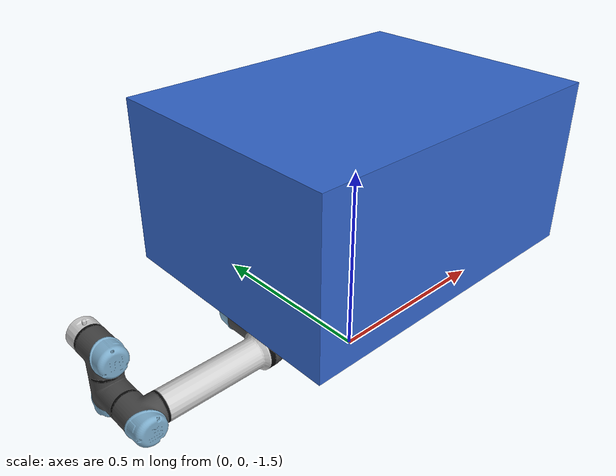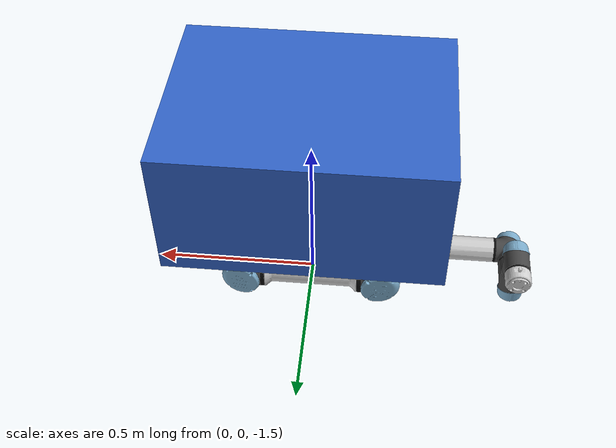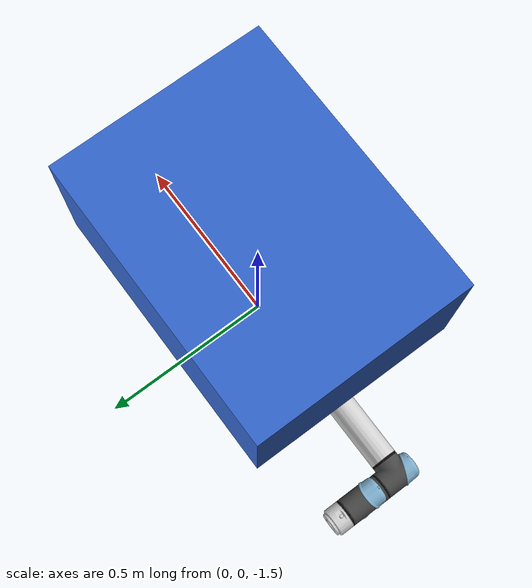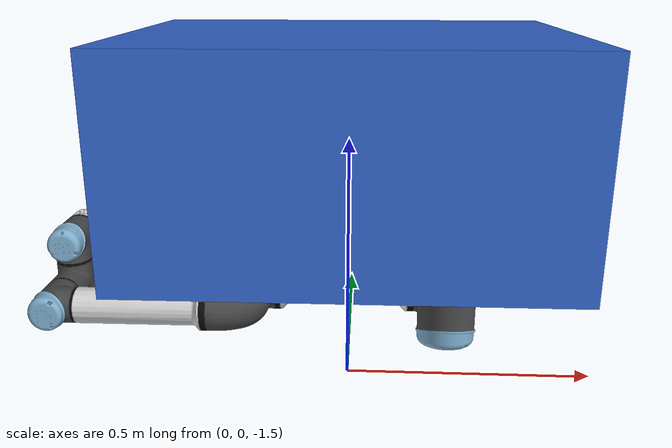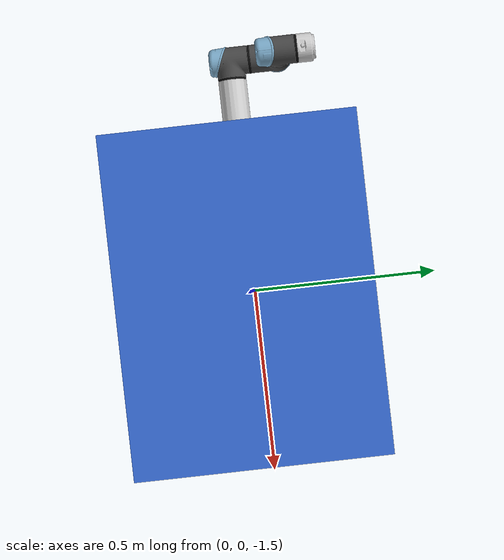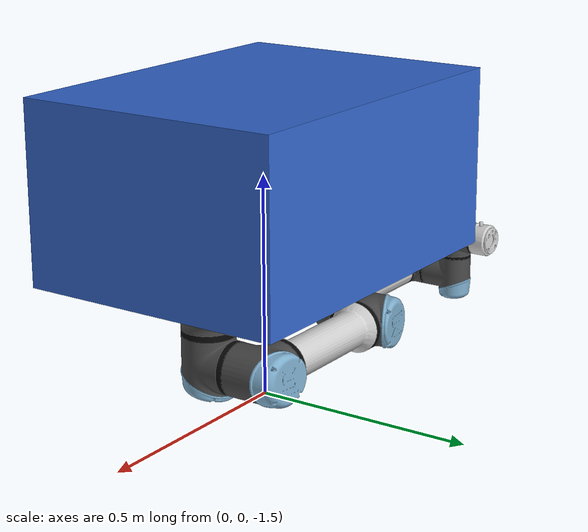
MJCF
<mujoco model="underwater_rov_base">
  <compiler inertiafromgeom="true" angle="radian" autolimits="true" />
  <option integrator="implicitfast" />
  <worldbody>
    <body name="rov" pos="0 0 -1.0">
      <freejoint />
      <geom name="rov_body" type="box" size="0.4 0.3 0.2" mass="150.0" rgba="0.2 0.4 0.8 1" fluidshape="ellipsoid" />
    <body name="base" quat="0 0 1 0" childclass="ur5e" pos="0.2 0 -0.2">
      <inertial mass="4.0" pos="0 0 0" diaginertia="0.00443333156 0.00443333156 0.0072" />
      <geom mesh="base_0" material="black" class="visual" />
      <geom mesh="base_1" material="jointgray" class="visual" />
      <body name="shoulder_link" pos="0 0 0.163">
        <inertial mass="3.7" pos="0 0 0" diaginertia="0.0102675 0.0102675 0.00666" />
        <joint name="shoulder_pan_joint" class="size3" axis="0 0 1" />
        <geom mesh="shoulder_0" material="urblue" class="visual" />
        <geom mesh="shoulder_1" material="black" class="visual" />
        <geom mesh="shoulder_2" material="jointgray" class="visual" />
        <geom class="collision" size="0.06 0.06" pos="0 0 -0.04" fluidshape="ellipsoid" />
        <body name="upper_arm_link" pos="0 0.138 0" quat="1 0 1 0">
          <inertial mass="8.393" pos="0 0 0.2125" diaginertia="0.133886 0.133886 0.0151074" />
          <joint name="shoulder_lift_joint" class="size3" />
          <geom mesh="upperarm_0" material="linkgray" class="visual" />
          <geom mesh="upperarm_1" material="black" class="visual" />
          <geom mesh="upperarm_2" material="jointgray" class="visual" />
          <geom mesh="upperarm_3" material="urblue" class="visual" />
          <geom class="collision" pos="0 -0.04 0" quat="1 1 0 0" size="0.06 0.06" fluidshape="ellipsoid" />
          <geom class="collision" size="0.05 0.2" pos="0 0 0.2" fluidshape="ellipsoid" />
          <body name="forearm_link" pos="0 -0.131 0.425">
            <inertial mass="2.275" pos="0 0 0.196" diaginertia="0.0311796 0.0311796 0.004095" />
            <joint name="elbow_joint" class="size3_limited" />
            <geom mesh="forearm_0" material="urblue" class="visual" />
            <geom mesh="forearm_1" material="linkgray" class="visual" />
            <geom mesh="forearm_2" material="black" class="visual" />
            <geom mesh="forearm_3" material="jointgray" class="visual" />
            <geom class="collision" pos="0 0.08 0" quat="1 1 0 0" size="0.055 0.06" fluidshape="ellipsoid" />
            <geom class="collision" size="0.038 0.19" pos="0 0 0.2" fluidshape="ellipsoid" />
            <body name="wrist_1_link" pos="0 0 0.392" quat="1 0 1 0">
              <inertial mass="1.219" pos="0 0.127 0" diaginertia="0.0025599 0.0025599 0.0021942" />
              <joint name="wrist_1_joint" class="size1" />
              <geom mesh="wrist1_0" material="black" class="visual" />
              <geom mesh="wrist1_1" material="urblue" class="visual" />
              <geom mesh="wrist1_2" material="jointgray" class="visual" />
              <geom class="collision" pos="0 0.05 0" quat="1 1 0 0" size="0.04 0.07" fluidshape="ellipsoid" />
              <body name="wrist_2_link" pos="0 0.127 0">
                <inertial mass="1.219" pos="0 0 0.1" diaginertia="0.0025599 0.0025599 0.0021942" />
                <joint name="wrist_2_joint" axis="0 0 1" class="size1" />
                <geom mesh="wrist2_0" material="black" class="visual" />
                <geom mesh="wrist2_1" material="urblue" class="visual" />
                <geom mesh="wrist2_2" material="jointgray" class="visual" />
                <geom class="collision" size="0.04 0.06" pos="0 0 0.04" fluidshape="ellipsoid" />
                <geom class="collision" pos="0 0.02 0.1" quat="1 1 0 0" size="0.04 0.04" fluidshape="ellipsoid" />
                <body name="wrist_3_link" pos="0 0 0.1">
                  <inertial mass="0.1889" pos="0 0.0771683 0" quat="1 0 0 1" diaginertia="0.000132134 9.90863e-05 9.90863e-05" />
                  <joint name="wrist_3_joint" class="size1" />
                  <geom material="linkgray" mesh="wrist3" class="visual" />
                  <geom class="eef_collision" pos="0 0.08 0" quat="1 1 0 0" size="0.04 0.02" fluidshape="ellipsoid" />
                  <site name="attachment_site" pos="0 0.1 0" quat="-1 1 0 0" />
                <body name="gripper_mount" pos="0 0.1 0" quat="-1 1 0 0"><body name="gripper_base_mount" pos="0 0 0.007" childclass="gripper_2f85">
      <geom class="gripper_visual" mesh="gripper_base_mount" material="gripper_black" />
      <geom class="gripper_collision" mesh="gripper_base_mount" fluidshape="ellipsoid" />
      <body name="gripper_base" pos="0 0 0.0038" quat="1 0 0 -1">
        <inertial mass="0.777441" pos="0 -2.70394e-05 0.0354675" quat="1 -0.00152849 0 0" diaginertia="0.000260285 0.000225381 0.000152708" />
        <geom class="gripper_visual" mesh="gripper_base" material="gripper_black" />
        <geom class="gripper_collision" mesh="gripper_base" fluidshape="ellipsoid" />
        <site name="gripper_pinch" pos="0 0 0.145" type="sphere" group="5" rgba="0.9 0.9 0.9 1" size="0.005" />

        <body name="gripper_right_driver" pos="0 0.0306011 0.054904">
          <inertial mass="0.00899563" pos="2.96931e-12 0.0177547 0.00107314" quat="0.681301 0.732003 0 0" diaginertia="1.72352e-06 1.60906e-06 3.22006e-07" />
          <joint name="gripper_right_driver_joint" class="gripper_driver" />
          <geom class="gripper_visual" mesh="gripper_driver" material="gripper_gray" />
          <geom class="gripper_collision" mesh="gripper_driver" fluidshape="ellipsoid" />
          <body name="gripper_right_coupler" pos="0 0.0315 -0.0041">
            <inertial mass="0.0140974" pos="0 0.00301209 0.0232175" quat="0.705636 -0.0455904 0.0455904 0.705636" diaginertia="4.16206e-06 3.52216e-06 8.88131e-07" />
            <joint name="gripper_right_coupler_joint" class="gripper_coupler" />
            <geom class="gripper_visual" mesh="gripper_coupler" material="gripper_black" />
            <geom class="gripper_collision" mesh="gripper_coupler" fluidshape="ellipsoid" />
          </body>
        </body>
        <body name="gripper_right_spring_link" pos="0 0.0132 0.0609">
          <inertial mass="0.0221642" pos="-8.65005e-09 0.0181624 0.0212658" quat="0.663403 -0.244737 0.244737 0.663403" diaginertia="8.96853e-06 6.71733e-06 2.63931e-06" />
          <joint name="gripper_right_spring_link_joint" class="gripper_spring_link" />
          <geom class="gripper_visual" mesh="gripper_spring_link" material="gripper_black" />
          <geom class="gripper_collision" mesh="gripper_spring_link" fluidshape="ellipsoid" />
          <body name="gripper_right_follower" pos="0 0.055 0.0375">
            <inertial mass="0.0125222" pos="0 -0.011046 0.0124786" quat="1 0.1664 0 0" diaginertia="2.67415e-06 2.4559e-06 6.02031e-07" />
            <joint name="gripper_right_follower_joint" class="gripper_follower" />
            <geom class="gripper_visual" mesh="gripper_follower" material="gripper_black" />
            <geom class="gripper_collision" mesh="gripper_follower" fluidshape="ellipsoid" />
            <body name="gripper_right_pad" pos="0 -0.0189 0.01352">
              <geom class="gripper_pad_box1" name="gripper_right_pad1" fluidshape="ellipsoid" />
              <geom class="gripper_pad_box2" name="gripper_right_pad2" fluidshape="ellipsoid" />
              <inertial mass="0.0035" pos="0 -0.0025 0.0185" quat="0.707107 0 0 0.707107" diaginertia="4.73958e-07 3.64583e-07 1.23958e-07" />
              <geom class="gripper_visual" mesh="gripper_pad" />
              <body name="gripper_right_silicone_pad">
                <geom class="gripper_visual" mesh="gripper_silicone_pad" material="gripper_black" />
              </body>
            </body>
          </body>
        </body>

        <body name="gripper_left_driver" pos="0 -0.0306011 0.054904" quat="0 0 0 1">
          <inertial mass="0.00899563" pos="0 0.0177547 0.00107314" quat="0.681301 0.732003 0 0" diaginertia="1.72352e-06 1.60906e-06 3.22006e-07" />
          <joint name="gripper_left_driver_joint" class="gripper_driver" />
          <geom class="gripper_visual" mesh="gripper_driver" material="gripper_gray" />
          <geom class="gripper_collision" mesh="gripper_driver" fluidshape="ellipsoid" />
          <body name="gripper_left_coupler" pos="0 0.0315 -0.0041">
            <inertial mass="0.0140974" pos="0 0.00301209 0.0232175" quat="0.705636 -0.0455904 0.0455904 0.705636" diaginertia="4.16206e-06 3.52216e-06 8.88131e-07" />
            <joint name="gripper_left_coupler_joint" class="gripper_coupler" />
            <geom class="gripper_visual" mesh="gripper_coupler" material="gripper_black" />
            <geom class="gripper_collision" mesh="gripper_coupler" fluidshape="ellipsoid" />
          </body>
        </body>
        <body name="gripper_left_spring_link" pos="0 -0.0132 0.0609" quat="0 0 0 1">
          <inertial mass="0.0221642" pos="-8.65005e-09 0.0181624 0.0212658" quat="0.663403 -0.244737 0.244737 0.663403" diaginertia="8.96853e-06 6.71733e-06 2.63931e-06" />
          <joint name="gripper_left_spring_link_joint" class="gripper_spring_link" />
          <geom class="gripper_visual" mesh="gripper_spring_link" material="gripper_black" />
          <geom class="gripper_collision" mesh="gripper_spring_link" fluidshape="ellipsoid" />
          <body name="gripper_left_follower" pos="0 0.055 0.0375">
            <inertial mass="0.0125222" pos="0 -0.011046 0.0124786" quat="1 0.1664 0 0" diaginertia="2.67415e-06 2.4559e-06 6.02031e-07" />
            <joint name="gripper_left_follower_joint" class="gripper_follower" />
            <geom class="gripper_visual" mesh="gripper_follower" material="gripper_black" />
            <geom class="gripper_collision" mesh="gripper_follower" fluidshape="ellipsoid" />
            <body name="gripper_left_pad" pos="0 -0.0189 0.01352">
              <geom class="gripper_pad_box1" name="gripper_left_pad1" fluidshape="ellipsoid" />
              <geom class="gripper_pad_box2" name="gripper_left_pad2" fluidshape="ellipsoid" />
              <inertial mass="0.0035" pos="0 -0.0025 0.0185" quat="1 0 0 1" diaginertia="4.73958e-07 3.64583e-07 1.23958e-07" />
              <geom class="gripper_visual" mesh="gripper_pad" />
              <body name="gripper_left_silicone_pad">
                <geom class="gripper_visual" mesh="gripper_silicone_pad" material="gripper_black" />
              </body>
            </body>
          </body>
        </body>
      </body>
    </body>
  </body></body>
              </body>
            </body>
          </body>
        </body>
      </body>
    </body>
  </body>
  </worldbody>
  <sensor>
    <framepos name="pos" objtype="body" objname="rov" />
    <framelinvel name="vel" objtype="body" objname="rov" />
  </sensor>
<contact><exclude body1="rov" body2="base" /><exclude body1="rov" body2="shoulder_link" /><exclude body1="wrist_3_link" body2="gripper_base_mount" /><exclude body1="gripper_base" body2="gripper_left_driver" />
    <exclude body1="gripper_base" body2="gripper_right_driver" />
    <exclude body1="gripper_base" body2="gripper_left_spring_link" />
    <exclude body1="gripper_base" body2="gripper_right_spring_link" />
    <exclude body1="gripper_right_coupler" body2="gripper_right_follower" />
    <exclude body1="gripper_left_coupler" body2="gripper_left_follower" />
  </contact><asset><material class="ur5e" name="black" rgba="0.033 0.033 0.033 1" />
    <material class="ur5e" name="jointgray" rgba="0.278 0.278 0.278 1" />
    <material class="ur5e" name="linkgray" rgba="0.82 0.82 0.82 1" />
    <material class="ur5e" name="urblue" rgba="0.49 0.678 0.8 1" />

    <mesh file="E:/Projects/mujoco_plugin/mujoco_plugin/assets/mujoco_menagerie/universal_robots_ur5e/assets/base_0.obj" />
    <mesh file="E:/Projects/mujoco_plugin/mujoco_plugin/assets/mujoco_menagerie/universal_robots_ur5e/assets/base_1.obj" />
    <mesh file="E:/Projects/mujoco_plugin/mujoco_plugin/assets/mujoco_menagerie/universal_robots_ur5e/assets/shoulder_0.obj" />
    <mesh file="E:/Projects/mujoco_plugin/mujoco_plugin/assets/mujoco_menagerie/universal_robots_ur5e/assets/shoulder_1.obj" />
    <mesh file="E:/Projects/mujoco_plugin/mujoco_plugin/assets/mujoco_menagerie/universal_robots_ur5e/assets/shoulder_2.obj" />
    <mesh file="E:/Projects/mujoco_plugin/mujoco_plugin/assets/mujoco_menagerie/universal_robots_ur5e/assets/upperarm_0.obj" />
    <mesh file="E:/Projects/mujoco_plugin/mujoco_plugin/assets/mujoco_menagerie/universal_robots_ur5e/assets/upperarm_1.obj" />
    <mesh file="E:/Projects/mujoco_plugin/mujoco_plugin/assets/mujoco_menagerie/universal_robots_ur5e/assets/upperarm_2.obj" />
    <mesh file="E:/Projects/mujoco_plugin/mujoco_plugin/assets/mujoco_menagerie/universal_robots_ur5e/assets/upperarm_3.obj" />
    <mesh file="E:/Projects/mujoco_plugin/mujoco_plugin/assets/mujoco_menagerie/universal_robots_ur5e/assets/forearm_0.obj" />
    <mesh file="E:/Projects/mujoco_plugin/mujoco_plugin/assets/mujoco_menagerie/universal_robots_ur5e/assets/forearm_1.obj" />
    <mesh file="E:/Projects/mujoco_plugin/mujoco_plugin/assets/mujoco_menagerie/universal_robots_ur5e/assets/forearm_2.obj" />
    <mesh file="E:/Projects/mujoco_plugin/mujoco_plugin/assets/mujoco_menagerie/universal_robots_ur5e/assets/forearm_3.obj" />
    <mesh file="E:/Projects/mujoco_plugin/mujoco_plugin/assets/mujoco_menagerie/universal_robots_ur5e/assets/wrist1_0.obj" />
    <mesh file="E:/Projects/mujoco_plugin/mujoco_plugin/assets/mujoco_menagerie/universal_robots_ur5e/assets/wrist1_1.obj" />
    <mesh file="E:/Projects/mujoco_plugin/mujoco_plugin/assets/mujoco_menagerie/universal_robots_ur5e/assets/wrist1_2.obj" />
    <mesh file="E:/Projects/mujoco_plugin/mujoco_plugin/assets/mujoco_menagerie/universal_robots_ur5e/assets/wrist2_0.obj" />
    <mesh file="E:/Projects/mujoco_plugin/mujoco_plugin/assets/mujoco_menagerie/universal_robots_ur5e/assets/wrist2_1.obj" />
    <mesh file="E:/Projects/mujoco_plugin/mujoco_plugin/assets/mujoco_menagerie/universal_robots_ur5e/assets/wrist2_2.obj" />
    <mesh file="E:/Projects/mujoco_plugin/mujoco_plugin/assets/mujoco_menagerie/universal_robots_ur5e/assets/wrist3.obj" />
  <material name="gripper_metal" rgba="0.58 0.58 0.58 1" />
    <material name="gripper_silicone" rgba="0.1882 0.1882 0.1882 1" />
    <material name="gripper_gray" rgba="0.4627 0.4627 0.4627 1" />
    <material name="gripper_black" rgba="0.149 0.149 0.149 1" />

    <mesh class="gripper_2f85" file="E:/Projects/mujoco_plugin/mujoco_plugin/assets/mujoco_menagerie/robotiq_2f85/assets/base_mount.stl" name="gripper_base_mount" />
    <mesh class="gripper_2f85" file="E:/Projects/mujoco_plugin/mujoco_plugin/assets/mujoco_menagerie/robotiq_2f85/assets/base.stl" name="gripper_base" />
    <mesh class="gripper_2f85" file="E:/Projects/mujoco_plugin/mujoco_plugin/assets/mujoco_menagerie/robotiq_2f85/assets/driver.stl" name="gripper_driver" />
    <mesh class="gripper_2f85" file="E:/Projects/mujoco_plugin/mujoco_plugin/assets/mujoco_menagerie/robotiq_2f85/assets/coupler.stl" name="gripper_coupler" />
    <mesh class="gripper_2f85" file="E:/Projects/mujoco_plugin/mujoco_plugin/assets/mujoco_menagerie/robotiq_2f85/assets/follower.stl" name="gripper_follower" />
    <mesh class="gripper_2f85" file="E:/Projects/mujoco_plugin/mujoco_plugin/assets/mujoco_menagerie/robotiq_2f85/assets/pad.stl" name="gripper_pad" />
    <mesh class="gripper_2f85" file="E:/Projects/mujoco_plugin/mujoco_plugin/assets/mujoco_menagerie/robotiq_2f85/assets/silicone_pad.stl" name="gripper_silicone_pad" />
    <mesh class="gripper_2f85" file="E:/Projects/mujoco_plugin/mujoco_plugin/assets/mujoco_menagerie/robotiq_2f85/assets/spring_link.stl" name="gripper_spring_link" />
  </asset><actuator><general class="size3" name="shoulder_pan" joint="shoulder_pan_joint" />
    <general class="size3" name="shoulder_lift" joint="shoulder_lift_joint" />
    <general class="size3_limited" name="elbow" joint="elbow_joint" />
    <general class="size1" name="wrist_1" joint="wrist_1_joint" />
    <general class="size1" name="wrist_2" joint="wrist_2_joint" />
    <general class="size1" name="wrist_3" joint="wrist_3_joint" />
  <general class="gripper_2f85" name="gripper_fingers_actuator" tendon="gripper_split" forcerange="-5 5" ctrlrange="0 255" gainprm="0.3137255 0 0" biasprm="0 -100 -10" />
  </actuator><tendon><fixed name="gripper_split">
      <joint joint="gripper_right_driver_joint" coef="0.5" />
      <joint joint="gripper_left_driver_joint" coef="0.5" />
    </fixed>
  </tendon><default><default class="ur5e">
      <material specular="0.5" shininess="0.25" />
      <joint axis="0 1 0" range="-6.28319 6.28319" armature="0.1" />
      <general gaintype="fixed" biastype="affine" ctrlrange="-6.2831 6.2831" gainprm="2000" biasprm="0 -2000 -400" forcerange="-150 150" />
      <default class="size3">
        <default class="size3_limited">
          <joint range="-3.1415 3.1415" />
          <general ctrlrange="-3.1415 3.1415" />
        </default>
      </default>
      <default class="size1">
        <general gainprm="500" biasprm="0 -500 -100" forcerange="-28 28" />
      </default>
      <default class="visual">
        <geom type="mesh" contype="0" conaffinity="0" group="2" fluidshape="ellipsoid" />
      </default>
      <default class="collision">
        <geom type="capsule" group="3" fluidshape="ellipsoid" />
        <default class="eef_collision">
          <geom type="cylinder" fluidshape="ellipsoid" />
        </default>
      </default>
      <site size="0.001" rgba="0.5 0.5 0.5 0.3" group="4" />
    </default>
  <default class="gripper_2f85">
      <mesh scale="0.001 0.001 0.001" />
      <general biastype="affine" />

      <joint axis="1 0 0" />
      <default class="gripper_driver">
        <joint range="0 0.8" armature="0.005" damping="0.1" solimplimit="0.95 0.99 0.001" solreflimit="0.005 1" />
      </default>
      <default class="gripper_follower">
        <joint range="-0.872664 0.872664" armature="0.001" pos="0 -0.018 0.0065" solimplimit="0.95 0.99 0.001" solreflimit="0.005 1" />
      </default>
      <default class="gripper_spring_link">
        <joint range="-0.29670597283 0.8" armature="0.001" stiffness="0.05" springref="2.62" damping="0.00125" />
      </default>
      <default class="gripper_coupler">
        <joint range="-1.57 0" armature="0.001" solimplimit="0.95 0.99 0.001" solreflimit="0.005 1" />
      </default>

      <default class="gripper_visual">
        <geom type="mesh" contype="0" conaffinity="0" group="2" fluidshape="ellipsoid" />
      </default>
      <default class="gripper_collision">
        <geom type="mesh" group="3" fluidshape="ellipsoid" />
        <default class="gripper_pad_box1">
          <geom mass="0" type="box" pos="0 -0.0026 0.028125" size="0.011 0.004 0.009375" friction="0.7" solimp="0.95 0.99 0.001" solref="0.004 1" priority="1" rgba="0.55 0.55 0.55 1" fluidshape="ellipsoid" />
        </default>
        <default class="gripper_pad_box2">
          <geom mass="0" type="box" pos="0 -0.0026 0.009375" size="0.011 0.004 0.009375" friction="0.6" solimp="0.95 0.99 0.001" solref="0.004 1" priority="1" rgba="0.45 0.45 0.45 1" fluidshape="ellipsoid" />
        </default>
      </default>
    </default>
  </default><equality><connect anchor="0 0 0" body1="gripper_right_follower" body2="gripper_right_coupler" solimp="0.95 0.99 0.001" solref="0.005 1" />
    <connect anchor="0 0 0" body1="gripper_left_follower" body2="gripper_left_coupler" solimp="0.95 0.99 0.001" solref="0.005 1" />
    <joint joint1="gripper_right_driver_joint" joint2="gripper_left_driver_joint" polycoef="0 1 0 0 0" solimp="0.95 0.99 0.001" solref="0.005 1" />
  </equality></mujoco>
